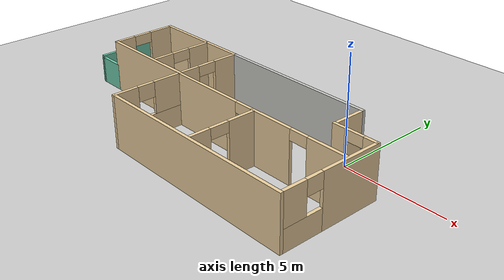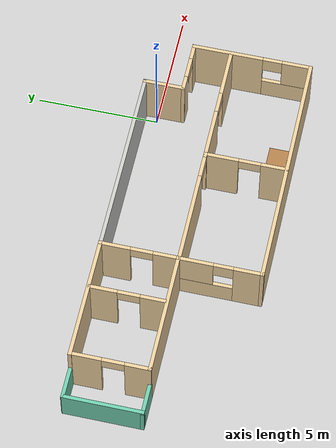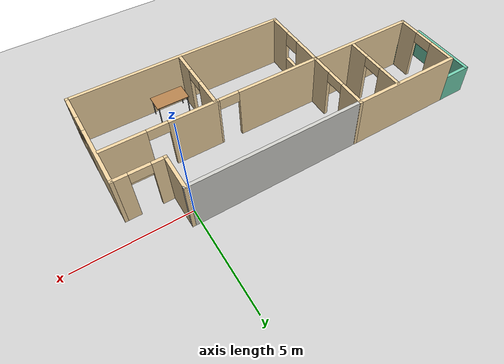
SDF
<sdf version="1.6">
 <world name="default">
  <model name="ground_plane">
   <static>1</static>
   <link name="link">
    <collision name="collision">
     <geometry><plane><normal>0 0 1</normal><size>100 100</size></plane></geometry>
     <surface>
      <contact><collide_bitmask>65535</collide_bitmask></contact>
      <friction><ode><mu>100</mu><mu2>50</mu2></ode></friction>
     </surface>
    </collision>
    <visual name="visual">
     <cast_shadows>0</cast_shadows>
     <geometry><plane><normal>0 0 1</normal><size>100 100</size></plane></geometry>
     <material>
      <script><uri>file://media/materials/scripts/gazebo.material</uri><name>Gazebo/Grey</name></script>
     </material>
    </visual>
   </link>
  </model>
  <model name="myhouse">
   <pose>-5.65027 -2.655 0 0 -0 0</pose>
   <link name="Wall_0">
    <pose>7.00027 1.625 0 0 -0 0</pose>
    <visual name="Wall_0_Visual_0">
     <pose>-0.804089 0 1.25 0 -0 0</pose>
     <geometry><box><size>0.641821 0.15 2.5</size></box></geometry>
     <material>
      <script><uri>file://media/materials/scripts/gazebo.material</uri><name>Gazebo/Grey</name></script>
      <ambient>0.921569 0.807843 0.615686 1</ambient>
     </material>
     <meta><layer>0</layer></meta>
    </visual>
    <collision name="Wall_0_Collision_0">
     <geometry><box><size>0.641821 0.15 2.5</size></box></geometry>
     <pose>-0.804089 0 1.25 0 -0 0</pose>
    </collision>
    <visual name="Wall_0_Visual_1">
     <pose>0.770911 0 1.25 0 -0 0</pose>
     <geometry><box><size>0.708179 0.15 2.5</size></box></geometry>
     <material>
      <script><uri>file://media/materials/scripts/gazebo.material</uri><name>Gazebo/Grey</name></script>
      <ambient>0.921569 0.807843 0.615686 1</ambient>
     </material>
     <meta><layer>0</layer></meta>
    </visual>
    <collision name="Wall_0_Collision_1">
     <geometry><box><size>0.708179 0.15 2.5</size></box></geometry>
     <pose>0.770911 0 1.25 0 -0 0</pose>
    </collision>
    <visual name="Wall_0_Visual_2">
     <pose>-0.033179 0 2.25 0 -0 0</pose>
     <geometry><box><size>0.9 0.15 0.5</size></box></geometry>
     <material>
      <script><uri>file://media/materials/scripts/gazebo.material</uri><name>Gazebo/Grey</name></script>
      <ambient>0.921569 0.807843 0.615686 1</ambient>
     </material>
     <meta><layer>0</layer></meta>
    </visual>
    <collision name="Wall_0_Collision_2">
     <geometry><box><size>0.9 0.15 0.5</size></box></geometry>
     <pose>-0.033179 0 2.25 0 -0 0</pose>
    </collision>
   </link>
   <link name="Wall_11">
    <pose>5.50113 0.078954 0 0 -0 3.14159</pose>
    <visual name="Wall_11_Visual_0">
     <pose>-1.5197 0 1.25 0 -0 0</pose>
     <geometry><box><size>1.9606 0.15 2.5</size></box></geometry>
     <material>
      <script><uri>file://media/materials/scripts/gazebo.material</uri><name>Gazebo/Grey</name></script>
      <ambient>0.921569 0.807843 0.615686 1</ambient>
     </material>
     <meta><layer>0</layer></meta>
    </visual>
    <collision name="Wall_11_Collision_0">
     <geometry><box><size>1.9606 0.15 2.5</size></box></geometry>
     <pose>-1.5197 0 1.25 0 -0 0</pose>
    </collision>
    <visual name="Wall_11_Visual_1">
     <pose>1.4303 0 1.25 0 -0 0</pose>
     <geometry><box><size>2.13941 0.15 2.5</size></box></geometry>
     <material>
      <script><uri>file://media/materials/scripts/gazebo.material</uri><name>Gazebo/Grey</name></script>
      <ambient>0.921569 0.807843 0.615686 1</ambient>
     </material>
     <meta><layer>0</layer></meta>
    </visual>
    <collision name="Wall_11_Collision_1">
     <geometry><box><size>2.13941 0.15 2.5</size></box></geometry>
     <pose>1.4303 0 1.25 0 -0 0</pose>
    </collision>
    <visual name="Wall_11_Visual_2">
     <pose>-0.089405 0 2.25 0 -0 0</pose>
     <geometry><box><size>0.9 0.15 0.5</size></box></geometry>
     <material>
      <script><uri>file://media/materials/scripts/gazebo.material</uri><name>Gazebo/Grey</name></script>
      <ambient>0.921569 0.807843 0.615686 1</ambient>
     </material>
     <meta><layer>0</layer></meta>
    </visual>
    <collision name="Wall_11_Collision_2">
     <geometry><box><size>0.9 0.15 0.5</size></box></geometry>
     <pose>-0.089405 0 2.25 0 -0 0</pose>
    </collision>
   </link>
   <link name="Wall_12">
    <pose>3.07613 -1.57105 0 0 -0 -1.5708</pose>
    <visual name="Wall_12_Visual_0">
     <pose>-1.01083 0 1.25 0 -0 0</pose>
     <geometry><box><size>1.42834 0.15 2.5</size></box></geometry>
     <material>
      <script><uri>file://media/materials/scripts/gazebo.material</uri><name>Gazebo/Grey</name></script>
      <ambient>0.921569 0.807843 0.615686 1</ambient>
     </material>
     <meta><layer>0</layer></meta>
    </visual>
    <collision name="Wall_12_Collision_0">
     <geometry><box><size>1.42834 0.15 2.5</size></box></geometry>
     <pose>-1.01083 0 1.25 0 -0 0</pose>
    </collision>
    <visual name="Wall_12_Visual_1">
     <pose>1.16417 0 1.25 0 -0 0</pose>
     <geometry><box><size>1.12166 0.15 2.5</size></box></geometry>
     <material>
      <script><uri>file://media/materials/scripts/gazebo.material</uri><name>Gazebo/Grey</name></script>
      <ambient>0.921569 0.807843 0.615686 1</ambient>
     </material>
     <meta><layer>0</layer></meta>
    </visual>
    <collision name="Wall_12_Collision_1">
     <geometry><box><size>1.12166 0.15 2.5</size></box></geometry>
     <pose>1.16417 0 1.25 0 -0 0</pose>
    </collision>
    <visual name="Wall_12_Visual_2">
     <pose>0.153338 0 2.25 0 -0 0</pose>
     <geometry><box><size>0.9 0.15 0.5</size></box></geometry>
     <material>
      <script><uri>file://media/materials/scripts/gazebo.material</uri><name>Gazebo/Grey</name></script>
      <ambient>0.921569 0.807843 0.615686 1</ambient>
     </material>
     <meta><layer>0</layer></meta>
    </visual>
    <collision name="Wall_12_Collision_2">
     <geometry><box><size>0.9 0.15 0.5</size></box></geometry>
     <pose>0.153338 0 2.25 0 -0 0</pose>
    </collision>
   </link>
   <link name="Wall_17">
    <pose>0.651128 0.078954 0 0 -0 3.14159</pose>
    <visual name="Wall_17_Visual_0">
     <pose>-2.3846 0 1.25 0 -0 0</pose>
     <geometry><box><size>0.230798 0.15 2.5</size></box></geometry>
     <material>
      <script><uri>file://media/materials/scripts/gazebo.material</uri><name>Gazebo/Grey</name></script>
      <ambient>0.921569 0.807843 0.615686 1</ambient>
     </material>
     <meta><layer>0</layer></meta>
    </visual>
    <collision name="Wall_17_Collision_0">
     <geometry><box><size>0.230798 0.15 2.5</size></box></geometry>
     <pose>-2.3846 0 1.25 0 -0 0</pose>
    </collision>
    <visual name="Wall_17_Visual_1">
     <pose>0.565399 0 1.25 0 -0 0</pose>
     <geometry><box><size>3.8692 0.15 2.5</size></box></geometry>
     <material>
      <script><uri>file://media/materials/scripts/gazebo.material</uri><name>Gazebo/Grey</name></script>
      <ambient>0.921569 0.807843 0.615686 1</ambient>
     </material>
     <meta><layer>0</layer></meta>
    </visual>
    <collision name="Wall_17_Collision_1">
     <geometry><box><size>3.8692 0.15 2.5</size></box></geometry>
     <pose>0.565399 0 1.25 0 -0 0</pose>
    </collision>
    <visual name="Wall_17_Visual_2">
     <pose>-1.8192 0 2.25 0 -0 0</pose>
     <geometry><box><size>0.9 0.15 0.5</size></box></geometry>
     <material>
      <script><uri>file://media/materials/scripts/gazebo.material</uri><name>Gazebo/Grey</name></script>
      <ambient>0.921569 0.807843 0.615686 1</ambient>
     </material>
     <meta><layer>0</layer></meta>
    </visual>
    <collision name="Wall_17_Collision_2">
     <geometry><box><size>0.9 0.15 0.5</size></box></geometry>
     <pose>-1.8192 0 2.25 0 -0 0</pose>
    </collision>
   </link>
   <link name="Wall_20">
    <pose>-1.79973 -1.5595 0 0 -0 1.5708</pose>
    <visual name="Wall_20_Visual_0">
     <pose>-1.13454 0 1.25 0 -0 0</pose>
     <geometry><box><size>1.21192 0.15 2.5</size></box></geometry>
     <material>
      <script><uri>file://media/materials/scripts/gazebo.material</uri><name>Gazebo/Grey</name></script>
      <ambient>0.921569 0.807843 0.615686 1</ambient>
     </material>
     <meta><layer>0</layer></meta>
    </visual>
    <collision name="Wall_20_Collision_0">
     <geometry><box><size>1.21192 0.15 2.5</size></box></geometry>
     <pose>-1.13454 0 1.25 0 -0 0</pose>
    </collision>
    <visual name="Wall_20_Visual_1">
     <pose>0.605958 0 0.5 0 -0 0</pose>
     <geometry><box><size>2.26908 0.15 1</size></box></geometry>
     <material>
      <script><uri>file://media/materials/scripts/gazebo.material</uri><name>Gazebo/Grey</name></script>
      <ambient>0.921569 0.807843 0.615686 1</ambient>
     </material>
     <meta><layer>0</layer></meta>
    </visual>
    <collision name="Wall_20_Collision_1">
     <geometry><box><size>2.26908 0.15 1</size></box></geometry>
     <pose>0.605958 0 0.5 0 -0 0</pose>
    </collision>
    <visual name="Wall_20_Visual_2">
     <pose>1.00596 0 1.75 0 -0 0</pose>
     <geometry><box><size>1.46908 0.15 1.5</size></box></geometry>
     <material>
      <script><uri>file://media/materials/scripts/gazebo.material</uri><name>Gazebo/Grey</name></script>
      <ambient>0.921569 0.807843 0.615686 1</ambient>
     </material>
     <meta><layer>0</layer></meta>
    </visual>
    <collision name="Wall_20_Collision_2">
     <geometry><box><size>1.46908 0.15 1.5</size></box></geometry>
     <pose>1.00596 0 1.75 0 -0 0</pose>
    </collision>
    <visual name="Wall_20_Visual_3">
     <pose>-0.128584 0 2.15 0 -0 0</pose>
     <geometry><box><size>0.8 0.15 0.7</size></box></geometry>
     <material>
      <script><uri>file://media/materials/scripts/gazebo.material</uri><name>Gazebo/Grey</name></script>
      <ambient>0.921569 0.807843 0.615686 1</ambient>
     </material>
     <meta><layer>0</layer></meta>
    </visual>
    <collision name="Wall_20_Collision_3">
     <geometry><box><size>0.8 0.15 0.7</size></box></geometry>
     <pose>-0.128584 0 2.15 0 -0 0</pose>
    </collision>
   </link>
   <link name="Wall_29">
    <collision name="Wall_29_Collision">
     <geometry><box><size>1.74 0.15 2.5</size></box></geometry>
     <pose>0 0 1.25 0 -0 0</pose>
    </collision>
    <visual name="Wall_29_Visual">
     <pose>0 0 1.25 0 -0 0</pose>
     <geometry><box><size>1.74 0.15 2.5</size></box></geometry>
     <material>
      <script><uri>file://media/materials/scripts/gazebo.material</uri><name>Gazebo/Grey</name></script>
      <ambient>0.921569 0.807843 0.615686 1</ambient>
     </material>
     <meta><layer>0</layer></meta>
    </visual>
    <pose>5.95027 2.42 0 0 -0 1.5708</pose>
   </link>
   <link name="Wall_30">
    <collision name="Wall_30_Collision">
     <geometry><box><size>7.75 0.15 2.5</size></box></geometry>
     <pose>0 0 1.25 0 -0 0</pose>
    </collision>
    <visual name="Wall_30_Visual">
     <pose>0 0 1.25 0 -0 0</pose>
     <geometry><box><size>7.75 0.15 2.5</size></box></geometry>
     <material>
      <script><uri>file://media/materials/scripts/gazebo.material</uri><name>Gazebo/CeilingTiled</name></script>
      <ambient>0.921569 0.807843 0.615686 1</ambient>
     </material>
     <meta><layer>0</layer></meta>
    </visual>
    <pose>2.15027 3.215 0 0 -0 3.14159</pose>
   </link>
   <link name="Wall_32">
    <pose>-1.79973 1.6655 0 0 -0 1.5708</pose>
    <visual name="Wall_32_Visual_0">
     <pose>-1.09237 0 1.25 0 -0 0</pose>
     <geometry><box><size>1.08427 0.15 2.5</size></box></geometry>
     <material>
      <script><uri>file://media/materials/scripts/gazebo.material</uri><name>Gazebo/Grey</name></script>
      <ambient>0.921569 0.807843 0.615686 1</ambient>
     </material>
     <meta><layer>0</layer></meta>
    </visual>
    <collision name="Wall_32_Collision_0">
     <geometry><box><size>1.08427 0.15 2.5</size></box></geometry>
     <pose>-1.09237 0 1.25 0 -0 0</pose>
    </collision>
    <visual name="Wall_32_Visual_1">
     <pose>0.992134 0 1.25 0 -0 0</pose>
     <geometry><box><size>1.28473 0.15 2.5</size></box></geometry>
     <material>
      <script><uri>file://media/materials/scripts/gazebo.material</uri><name>Gazebo/Grey</name></script>
      <ambient>0.921569 0.807843 0.615686 1</ambient>
     </material>
     <meta><layer>0</layer></meta>
    </visual>
    <collision name="Wall_32_Collision_1">
     <geometry><box><size>1.28473 0.15 2.5</size></box></geometry>
     <pose>0.992134 0 1.25 0 -0 0</pose>
    </collision>
    <visual name="Wall_32_Visual_2">
     <pose>-0.100233 0 2.25 0 -0 0</pose>
     <geometry><box><size>0.9 0.15 0.5</size></box></geometry>
     <material>
      <script><uri>file://media/materials/scripts/gazebo.material</uri><name>Gazebo/Grey</name></script>
      <ambient>0.921569 0.807843 0.615686 1</ambient>
     </material>
     <meta><layer>0</layer></meta>
    </visual>
    <collision name="Wall_32_Collision_2">
     <geometry><box><size>0.9 0.15 0.5</size></box></geometry>
     <pose>-0.100233 0 2.25 0 -0 0</pose>
    </collision>
   </link>
   <link name="Wall_37">
    <collision name="Wall_37_Collision">
     <geometry><box><size>5.1 0.15 2.5</size></box></geometry>
     <pose>0 0 1.25 0 -0 0</pose>
    </collision>
    <visual name="Wall_37_Visual">
     <pose>0 0 1.25 0 -0 0</pose>
     <geometry><box><size>5.1 0.15 2.5</size></box></geometry>
     <material>
      <script><uri>file://media/materials/scripts/gazebo.material</uri><name>Gazebo/Grey</name></script>
      <ambient>0.921569 0.807843 0.615686 1</ambient>
     </material>
     <meta><layer>0</layer></meta>
    </visual>
    <pose>-4.27473 3.225 0 0 -0 3.14159</pose>
   </link>
   <link name="Wall_51">
    <pose>-3.76973 1.695 0 0 -0 -1.5708</pose>
    <visual name="Wall_51_Visual_0">
     <pose>-0.966083 0 1.25 0 -0 0</pose>
     <geometry><box><size>1.16783 0.15 2.5</size></box></geometry>
     <material>
      <script><uri>file://media/materials/scripts/gazebo.material</uri><name>Gazebo/Grey</name></script>
      <ambient>0.921569 0.807843 0.615686 1</ambient>
     </material>
     <meta><layer>0</layer></meta>
    </visual>
    <collision name="Wall_51_Collision_0">
     <geometry><box><size>1.16783 0.15 2.5</size></box></geometry>
     <pose>-0.966083 0 1.25 0 -0 0</pose>
    </collision>
    <visual name="Wall_51_Visual_1">
     <pose>1.03392 0 1.25 0 -0 0</pose>
     <geometry><box><size>1.03217 0.15 2.5</size></box></geometry>
     <material>
      <script><uri>file://media/materials/scripts/gazebo.material</uri><name>Gazebo/Grey</name></script>
      <ambient>0.921569 0.807843 0.615686 1</ambient>
     </material>
     <meta><layer>0</layer></meta>
    </visual>
    <collision name="Wall_51_Collision_1">
     <geometry><box><size>1.03217 0.15 2.5</size></box></geometry>
     <pose>1.03392 0 1.25 0 -0 0</pose>
    </collision>
    <visual name="Wall_51_Visual_2">
     <pose>0.067833 0 2.25 0 -0 0</pose>
     <geometry><box><size>0.9 0.15 0.5</size></box></geometry>
     <material>
      <script><uri>file://media/materials/scripts/gazebo.material</uri><name>Gazebo/Grey</name></script>
      <ambient>0.921569 0.807843 0.615686 1</ambient>
     </material>
     <meta><layer>0</layer></meta>
    </visual>
    <collision name="Wall_51_Collision_2">
     <geometry><box><size>0.9 0.15 0.5</size></box></geometry>
     <pose>0.067833 0 2.25 0 -0 0</pose>
    </collision>
   </link>
   <link name="Wall_55">
    <pose>-6.73773 1.6725 0 0 -0 -1.5708</pose>
    <visual name="Wall_55_Visual_0">
     <pose>-0.974197 0 1.25 0 -0 0</pose>
     <geometry><box><size>1.30661 0.15 2.5</size></box></geometry>
     <material>
      <script><uri>file://media/materials/scripts/gazebo.material</uri><name>Gazebo/Grey</name></script>
      <ambient>0.921569 0.807843 0.615686 1</ambient>
     </material>
     <meta><layer>0</layer></meta>
    </visual>
    <collision name="Wall_55_Collision_0">
     <geometry><box><size>1.30661 0.15 2.5</size></box></geometry>
     <pose>-0.974197 0 1.25 0 -0 0</pose>
    </collision>
    <visual name="Wall_55_Visual_1">
     <pose>1.1033 0 1.25 0 -0 0</pose>
     <geometry><box><size>1.04839 0.15 2.5</size></box></geometry>
     <material>
      <script><uri>file://media/materials/scripts/gazebo.material</uri><name>Gazebo/Grey</name></script>
      <ambient>0.921569 0.807843 0.615686 1</ambient>
     </material>
     <meta><layer>0</layer></meta>
    </visual>
    <collision name="Wall_55_Collision_1">
     <geometry><box><size>1.04839 0.15 2.5</size></box></geometry>
     <pose>1.1033 0 1.25 0 -0 0</pose>
    </collision>
    <visual name="Wall_55_Visual_2">
     <pose>0.129106 0 2.25 0 -0 0</pose>
     <geometry><box><size>0.9 0.15 0.5</size></box></geometry>
     <material>
      <script><uri>file://media/materials/scripts/gazebo.material</uri><name>Gazebo/Grey</name></script>
      <ambient>0.921569 0.807843 0.615686 1</ambient>
     </material>
     <meta><layer>0</layer></meta>
    </visual>
    <collision name="Wall_55_Collision_2">
     <geometry><box><size>0.9 0.15 0.5</size></box></geometry>
     <pose>0.129106 0 2.25 0 -0 0</pose>
    </collision>
   </link>
   <link name="Wall_6">
    <pose>8.05027 -0.8 0 0 -0 -1.5708</pose>
    <visual name="Wall_6_Visual_0">
     <pose>-1.02355 0 1.25 0 -0 0</pose>
     <geometry><box><size>2.95291 0.15 2.5</size></box></geometry>
     <material>
      <script><uri>file://media/materials/scripts/gazebo.material</uri><name>Gazebo/Grey</name></script>
      <ambient>0.921569 0.807843 0.615686 1</ambient>
     </material>
     <meta><layer>0</layer></meta>
    </visual>
    <collision name="Wall_6_Collision_0">
     <geometry><box><size>2.95291 0.15 2.5</size></box></geometry>
     <pose>-1.02355 0 1.25 0 -0 0</pose>
    </collision>
    <visual name="Wall_6_Visual_1">
     <pose>1.47645 0 0.5 0 -0 0</pose>
     <geometry><box><size>2.04709 0.15 1</size></box></geometry>
     <material>
      <script><uri>file://media/materials/scripts/gazebo.material</uri><name>Gazebo/Grey</name></script>
      <ambient>0.921569 0.807843 0.615686 1</ambient>
     </material>
     <meta><layer>0</layer></meta>
    </visual>
    <collision name="Wall_6_Collision_1">
     <geometry><box><size>2.04709 0.15 1</size></box></geometry>
     <pose>1.47645 0 0.5 0 -0 0</pose>
    </collision>
    <visual name="Wall_6_Visual_2">
     <pose>1.87645 0 1.75 0 -0 0</pose>
     <geometry><box><size>1.24709 0.15 1.5</size></box></geometry>
     <material>
      <script><uri>file://media/materials/scripts/gazebo.material</uri><name>Gazebo/Grey</name></script>
      <ambient>0.921569 0.807843 0.615686 1</ambient>
     </material>
     <meta><layer>0</layer></meta>
    </visual>
    <collision name="Wall_6_Collision_2">
     <geometry><box><size>1.24709 0.15 1.5</size></box></geometry>
     <pose>1.87645 0 1.75 0 -0 0</pose>
    </collision>
    <visual name="Wall_6_Visual_3">
     <pose>0.852906 0 2.15 0 -0 0</pose>
     <geometry><box><size>0.8 0.15 0.7</size></box></geometry>
     <material>
      <script><uri>file://media/materials/scripts/gazebo.material</uri><name>Gazebo/Grey</name></script>
      <ambient>0.921569 0.807843 0.615686 1</ambient>
     </material>
     <meta><layer>0</layer></meta>
    </visual>
    <collision name="Wall_6_Collision_3">
     <geometry><box><size>0.8 0.15 0.7</size></box></geometry>
     <pose>0.852906 0 2.15 0 -0 0</pose>
    </collision>
   </link>
   <link name="Wall_66">
    <collision name="Wall_66_Collision">
     <geometry><box><size>5.07 0.15 2.5</size></box></geometry>
     <pose>0 0 1.25 0 -0 0</pose>
    </collision>
    <visual name="Wall_66_Visual">
     <pose>0 0 1.25 0 -0 0</pose>
     <geometry><box><size>5.07 0.15 2.5</size></box></geometry>
     <material>
      <script><uri>file://media/materials/scripts/gazebo.material</uri><name>Gazebo/Grey</name></script>
      <ambient>0.921569 0.807843 0.615686 1</ambient>
     </material>
     <meta><layer>0</layer></meta>
    </visual>
    <pose>-4.25973 0.106 0 0 -0 3.14159</pose>
   </link>
   <link name="Wall_69">
    <collision name="Wall_69_Collision">
     <geometry><box><size>1.48098 0.15 1.3</size></box></geometry>
     <pose>0 0 0.65 0 -0 0</pose>
    </collision>
    <visual name="Wall_69_Visual">
     <pose>0 0 0.65 0 -0 0</pose>
     <geometry><box><size>1.48098 0.15 1.3</size></box></geometry>
     <material>
      <script><uri>file://media/materials/scripts/gazebo.material</uri><name>Gazebo/Grey</name></script>
      <ambient>0.435294 0.796078 0.67451 1</ambient>
     </material>
     <meta><layer>0</layer></meta>
    </visual>
    <pose>-7.38473 0.1055 0 0 -0 -3.14084</pose>
   </link>
   <link name="Wall_70">
    <collision name="Wall_70_Collision">
     <geometry><box><size>3.25 0.15 1.4</size></box></geometry>
     <pose>0 0 0.7 0 -0 0</pose>
    </collision>
    <visual name="Wall_70_Visual">
     <pose>0 0 0.7 0 -0 0</pose>
     <geometry><box><size>3.25 0.15 1.4</size></box></geometry>
     <material>
      <script><uri>file://media/materials/scripts/gazebo.material</uri><name>Gazebo/Grey</name></script>
      <ambient>0.435294 0.796078 0.67451 1</ambient>
     </material>
     <meta><layer>0</layer></meta>
    </visual>
    <pose>-8.04973 1.655 0 0 -0 1.5708</pose>
   </link>
   <link name="Wall_74">
    <collision name="Wall_74_Collision">
     <geometry><box><size>1.46 0.15 1.4</size></box></geometry>
     <pose>0 0 0.7 0 -0 0</pose>
    </collision>
    <visual name="Wall_74_Visual">
     <pose>0 0 0.7 0 -0 0</pose>
     <geometry><box><size>1.46 0.15 1.4</size></box></geometry>
     <material>
      <script><uri>file://media/materials/scripts/gazebo.material</uri><name>Gazebo/Grey</name></script>
      <ambient>0.435294 0.796078 0.67451 1</ambient>
     </material>
     <meta><layer>0</layer></meta>
    </visual>
    <pose>-7.39273 3.225 0 0 -0 3.14159</pose>
   </link>
   <link name="Wall_9">
    <collision name="Wall_9_Collision">
     <geometry><box><size>10 0.15 2.5</size></box></geometry>
     <pose>0 0 1.25 0 -0 0</pose>
    </collision>
    <visual name="Wall_9_Visual">
     <pose>0 0 1.25 0 -0 0</pose>
     <geometry><box><size>10 0.15 2.5</size></box></geometry>
     <material>
      <script><uri>file://media/materials/scripts/gazebo.material</uri><name>Gazebo/Grey</name></script>
      <ambient>0.921569 0.807843 0.615686 1</ambient>
     </material>
     <meta><layer>0</layer></meta>
    </visual>
    <pose>3.12527 -3.225 0 0 -0 3.14159</pose>
   </link>
   <static>1</static>
  </model>
  <model name="table_clone">
   <static>1</static>
   <link name="link">
    <collision name="surface">
     <pose>0 0 1 0 -0 0</pose>
     <geometry><box><size>1.5 0.8 0.03</size></box></geometry>
     <surface><friction><ode><mu>0.6</mu><mu2>0.6</mu2></ode></friction></surface>
    </collision>
    <visual name="visual1">
     <pose>0 0 1 0 -0 0</pose>
     <geometry><box><size>1.5 0.8 0.03</size></box></geometry>
     <material>
      <script><uri>file://media/materials/scripts/gazebo.material</uri><name>Gazebo/Wood</name></script>
     </material>
    </visual>
    <collision name="front_left_leg">
     <pose>0.68 0.38 0.5 0 -0 0</pose>
     <geometry><cylinder><radius>0.02</radius><length>1</length></cylinder></geometry>
    </collision>
    <visual name="front_left_leg">
     <pose>0.68 0.38 0.5 0 -0 0</pose>
     <geometry><cylinder><radius>0.02</radius><length>1</length></cylinder></geometry>
     <material>
      <script><uri>file://media/materials/scripts/gazebo.material</uri><name>Gazebo/Grey</name></script>
     </material>
    </visual>
    <collision name="front_right_leg">
     <pose>0.68 -0.38 0.5 0 -0 0</pose>
     <geometry><cylinder><radius>0.02</radius><length>1</length></cylinder></geometry>
    </collision>
    <visual name="front_right_leg">
     <pose>0.68 -0.38 0.5 0 -0 0</pose>
     <geometry><cylinder><radius>0.02</radius><length>1</length></cylinder></geometry>
     <material>
      <script><uri>file://media/materials/scripts/gazebo.material</uri><name>Gazebo/Grey</name></script>
     </material>
    </visual>
    <collision name="back_right_leg">
     <pose>-0.68 -0.38 0.5 0 -0 0</pose>
     <geometry><cylinder><radius>0.02</radius><length>1</length></cylinder></geometry>
    </collision>
    <visual name="back_right_leg">
     <pose>-0.68 -0.38 0.5 0 -0 0</pose>
     <geometry><cylinder><radius>0.02</radius><length>1</length></cylinder></geometry>
     <material>
      <script><uri>file://media/materials/scripts/gazebo.material</uri><name>Gazebo/Grey</name></script>
     </material>
    </visual>
    <collision name="back_left_leg">
     <pose>-0.68 0.38 0.5 0 -0 0</pose>
     <geometry><cylinder><radius>0.02</radius><length>1</length></cylinder></geometry>
    </collision>
    <visual name="back_left_leg">
     <pose>-0.68 0.38 0.5 0 -0 0</pose>
     <geometry><cylinder><radius>0.02</radius><length>1</length></cylinder></geometry>
     <material>
      <script><uri>file://media/materials/scripts/gazebo.material</uri><name>Gazebo/Grey</name></script>
     </material>
    </visual>
   </link>
   <pose>-1.56994 -5.29085 0 0 -0 3.13504</pose>
  </model>
 </world>
</sdf>
